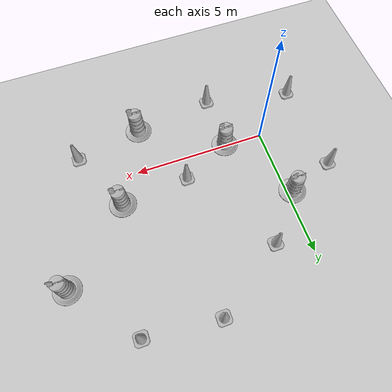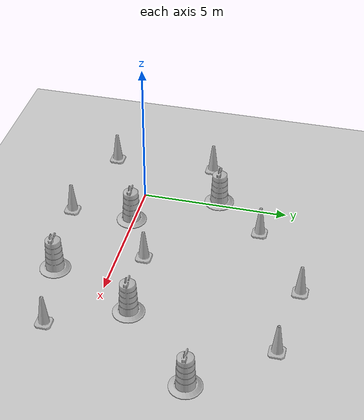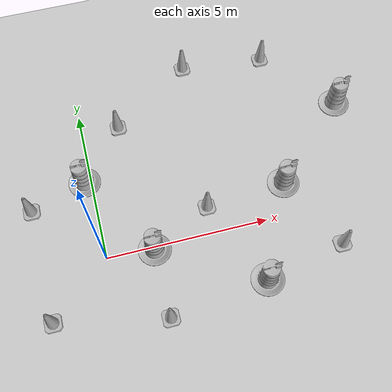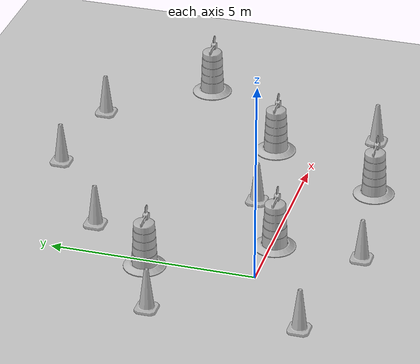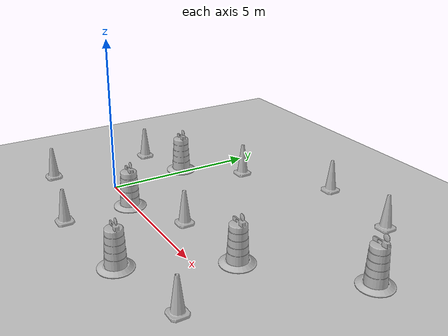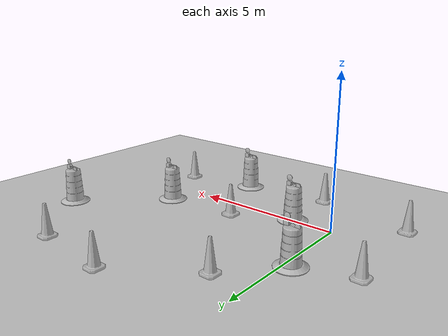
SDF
<sdf version="1.7">
 <world name="default">
  <light name="sun" type="directional">
   <pose>0 0 10 0 -0 0</pose>
   <diffuse>0.8 0.8 0.8 1</diffuse>
   <specular>0.2 0.2 0.2 1</specular>
   <attenuation>
    <range>1000</range>
    <constant>0.9</constant>
    <linear>0.01</linear>
    <quadratic>0.001</quadratic>
   </attenuation>
   <direction>-0.5 0.1 -0.9</direction>
   <spot><inner_angle>0</inner_angle><outer_angle>0</outer_angle><falloff>0</falloff></spot>
  </light>
  <model name="ground_plane">
   <static>1</static>
   <link name="link">
    <collision name="collision">
     <geometry><plane><normal>0 0 1</normal><size>100 100</size></plane></geometry>
     <surface>
      <contact><collide_bitmask>65535</collide_bitmask></contact>
      <friction><ode><mu>100</mu><mu2>50</mu2></ode></friction>
     </surface>
    </collision>
    <visual name="visual">
     <cast_shadows>0</cast_shadows>
     <geometry><plane><normal>0 0 1</normal><size>100 100</size></plane></geometry>
     <material>
      <script><uri>file://media/materials/scripts/gazebo.material</uri><name>Gazebo/Grey</name></script>
     </material>
    </visual>
   </link>
  </model>
  <gravity>0 0 -9.8</gravity>
  <magnetic_field>6e-06 2.3e-05 -4.2e-05</magnetic_field>
  <atmosphere type="adiabatic"/>
  <physics type="ode">
   <max_step_size>0.001</max_step_size>
   <real_time_factor>1</real_time_factor>
   <real_time_update_rate>1000</real_time_update_rate>
  </physics>
  <scene><ambient>0.4 0.4 0.4 1</ambient><background>0.7 0.7 0.7 1</background><shadows>1</shadows></scene>
  <spherical_coordinates>
   <surface_model>EARTH_WGS84</surface_model>
   <latitude_deg>0</latitude_deg>
   <longitude_deg>0</longitude_deg>
   <elevation>0</elevation>
   <heading_deg>0</heading_deg>
  </spherical_coordinates>
  <model name="Construction Barrel">
   <link name="link">
    <inertial>
     <pose>0 0 0.4 0 -0 0</pose>
     <mass>500</mass>
     <inertia><ixx>51.2096</ixx><iyy>51.2096</iyy><izz>25</izz><ixy>0</ixy><ixz>0</ixz><iyz>0</iyz></inertia>
    </inertial>
    <collision name="collision">
     <geometry><mesh><uri>model://construction_barrel/meshes/construction_barrel.dae</uri></mesh></geometry>
    </collision>
    <visual name="visual">
     <geometry><mesh><uri>model://construction_barrel/meshes/construction_barrel.dae</uri></mesh></geometry>
    </visual>
   </link>
   <pose>1.4516 -0.08441 -2e-06 -5e-06 -4e-06 -2.6e-05</pose>
  </model>
  <model name="Construction Cone">
   <link name="link">
    <collision name="collision">
     <geometry>
      <mesh><scale>10 10 10</scale><uri>model://construction_cone/meshes/construction_cone.dae</uri></mesh>
     </geometry>
    </collision>
    <visual name="visual">
     <geometry>
      <mesh><scale>10 10 10</scale><uri>model://construction_cone/meshes/construction_cone.dae</uri></mesh>
     </geometry>
    </visual>
    <inertial>
     <inertia><ixx>1</ixx><ixy>0</ixy><ixz>0</ixz><iyy>1</iyy><iyz>0</iyz><izz>1</izz></inertia>
     <mass>1</mass>
    </inertial>
   </link>
   <pose>1.4541 -2.19611 0 -0 -0 -0</pose>
  </model>
  <model name="Construction Cone_0">
   <link name="link">
    <collision name="collision">
     <geometry>
      <mesh><scale>10 10 10</scale><uri>model://construction_cone/meshes/construction_cone.dae</uri></mesh>
     </geometry>
    </collision>
    <visual name="visual">
     <geometry>
      <mesh><scale>10 10 10</scale><uri>model://construction_cone/meshes/construction_cone.dae</uri></mesh>
     </geometry>
    </visual>
    <inertial>
     <inertia><ixx>1</ixx><ixy>0</ixy><ixz>0</ixz><iyy>1</iyy><iyz>0</iyz><izz>1</izz></inertia>
     <mass>1</mass>
    </inertial>
   </link>
   <pose>-1.82799 -1.52566 -0 0 -0 0</pose>
  </model>
  <model name="Construction Cone_1">
   <link name="link">
    <collision name="collision">
     <geometry>
      <mesh><scale>10 10 10</scale><uri>model://construction_cone/meshes/construction_cone.dae</uri></mesh>
     </geometry>
    </collision>
    <visual name="visual">
     <geometry>
      <mesh><scale>10 10 10</scale><uri>model://construction_cone/meshes/construction_cone.dae</uri></mesh>
     </geometry>
    </visual>
    <inertial>
     <inertia><ixx>1</ixx><ixy>0</ixy><ixz>0</ixz><iyy>1</iyy><iyz>0</iyz><izz>1</izz></inertia>
     <mass>1</mass>
    </inertial>
   </link>
   <pose>-1.96877 2.02121 -0 0 -0 0</pose>
  </model>
  <model name="Construction Barrel_0">
   <link name="link">
    <inertial>
     <pose>0 0 0.4 0 -0 0</pose>
     <mass>500</mass>
     <inertia><ixx>51.2096</ixx><iyy>51.2096</iyy><izz>25</izz><ixy>0</ixy><ixz>0</ixz><iyz>0</iyz></inertia>
    </inertial>
    <collision name="collision">
     <geometry><mesh><uri>model://construction_barrel/meshes/construction_barrel.dae</uri></mesh></geometry>
    </collision>
    <visual name="visual">
     <geometry><mesh><uri>model://construction_barrel/meshes/construction_barrel.dae</uri></mesh></geometry>
    </visual>
   </link>
   <pose>4.46872 -1.79875 -2e-06 1e-06 7e-06 -2e-05</pose>
  </model>
  <model name="Construction Barrel_1">
   <link name="link">
    <inertial>
     <pose>0 0 0.4 0 -0 0</pose>
     <mass>500</mass>
     <inertia><ixx>51.2096</ixx><iyy>51.2096</iyy><izz>25</izz><ixy>0</ixy><ixz>0</ixz><iyz>0</iyz></inertia>
    </inertial>
    <collision name="collision">
     <geometry><mesh><uri>model://construction_barrel/meshes/construction_barrel.dae</uri></mesh></geometry>
    </collision>
    <visual name="visual">
     <geometry><mesh><uri>model://construction_barrel/meshes/construction_barrel.dae</uri></mesh></geometry>
    </visual>
   </link>
   <pose>-0.213529 2.6218 -0 0 0 -2e-05</pose>
  </model>
  <model name="Construction Cone_2">
   <link name="link">
    <collision name="collision">
     <geometry>
      <mesh><scale>10 10 10</scale><uri>model://construction_cone/meshes/construction_cone.dae</uri></mesh>
     </geometry>
    </collision>
    <visual name="visual">
     <geometry>
      <mesh><scale>10 10 10</scale><uri>model://construction_cone/meshes/construction_cone.dae</uri></mesh>
     </geometry>
    </visual>
    <inertial>
     <inertia><ixx>1</ixx><ixy>0</ixy><ixz>0</ixz><iyy>1</iyy><iyz>0</iyz><izz>1</izz></inertia>
     <mass>1</mass>
    </inertial>
   </link>
   <pose>1.20112 4.30531 -0 0 -0 0</pose>
  </model>
  <model name="Construction Cone_3">
   <link name="link">
    <collision name="collision">
     <geometry>
      <mesh><scale>10 10 10</scale><uri>model://construction_cone/meshes/construction_cone.dae</uri></mesh>
     </geometry>
    </collision>
    <visual name="visual">
     <geometry>
      <mesh><scale>10 10 10</scale><uri>model://construction_cone/meshes/construction_cone.dae</uri></mesh>
     </geometry>
    </visual>
    <inertial>
     <inertia><ixx>1</ixx><ixy>0</ixy><ixz>0</ixz><iyy>1</iyy><iyz>0</iyz><izz>1</izz></inertia>
     <mass>1</mass>
    </inertial>
   </link>
   <pose>3.31908 0.853157 -0 0 -1e-06 0</pose>
  </model>
  <model name="Construction Barrel_3">
   <link name="link">
    <inertial>
     <pose>0 0 0.4 0 -0 0</pose>
     <mass>500</mass>
     <inertia><ixx>51.2096</ixx><iyy>51.2096</iyy><izz>25</izz><ixy>0</ixy><ixz>0</ixz><iyz>0</iyz></inertia>
    </inertial>
    <collision name="collision">
     <geometry><mesh><uri>model://construction_barrel/meshes/construction_barrel.dae</uri></mesh></geometry>
    </collision>
    <visual name="visual">
     <geometry><mesh><uri>model://construction_barrel/meshes/construction_barrel.dae</uri></mesh></geometry>
    </visual>
   </link>
   <pose>5.87488 1.06176 1e-06 4e-06 2e-06 -1.3e-05</pose>
  </model>
  <model name="Construction Barrel_4">
   <link name="link">
    <inertial>
     <pose>0 0 0.4 0 -0 0</pose>
     <mass>500</mass>
     <inertia><ixx>51.2096</ixx><iyy>51.2096</iyy><izz>25</izz><ixy>0</ixy><ixz>0</ixz><iyz>0</iyz></inertia>
    </inertial>
    <collision name="collision">
     <geometry><mesh><uri>model://construction_barrel/meshes/construction_barrel.dae</uri></mesh></geometry>
    </collision>
    <visual name="visual">
     <geometry><mesh><uri>model://construction_barrel/meshes/construction_barrel.dae</uri></mesh></geometry>
    </visual>
   </link>
   <pose>8.44553 3.47066 -1e-06 -0 5e-06 -7e-06</pose>
  </model>
  <model name="Construction Cone_4">
   <link name="link">
    <collision name="collision">
     <geometry>
      <mesh><scale>10 10 10</scale><uri>model://construction_cone/meshes/construction_cone.dae</uri></mesh>
     </geometry>
    </collision>
    <visual name="visual">
     <geometry>
      <mesh><scale>10 10 10</scale><uri>model://construction_cone/meshes/construction_cone.dae</uri></mesh>
     </geometry>
    </visual>
    <inertial>
     <inertia><ixx>1</ixx><ixy>0</ixy><ixz>0</ixz><iyy>1</iyy><iyz>0</iyz><izz>1</izz></inertia>
     <mass>1</mass>
    </inertial>
   </link>
   <pose>3.80935 6.06672 -0 0 -0 0</pose>
  </model>
  <model name="Construction Cone_5">
   <link name="link">
    <collision name="collision">
     <geometry>
      <mesh><scale>10 10 10</scale><uri>model://construction_cone/meshes/construction_cone.dae</uri></mesh>
     </geometry>
    </collision>
    <visual name="visual">
     <geometry>
      <mesh><scale>10 10 10</scale><uri>model://construction_cone/meshes/construction_cone.dae</uri></mesh>
     </geometry>
    </visual>
    <inertial>
     <inertia><ixx>1</ixx><ixy>0</ixy><ixz>0</ixz><iyy>1</iyy><iyz>0</iyz><izz>1</izz></inertia>
     <mass>1</mass>
    </inertial>
   </link>
   <pose>6.53288 5.78497 -9e-06 -1e-06 1e-06 -0</pose>
  </model>
  <model name="Construction Cone_6">
   <link name="link">
    <collision name="collision">
     <geometry>
      <mesh><scale>10 10 10</scale><uri>model://construction_cone/meshes/construction_cone.dae</uri></mesh>
     </geometry>
    </collision>
    <visual name="visual">
     <geometry>
      <mesh><scale>10 10 10</scale><uri>model://construction_cone/meshes/construction_cone.dae</uri></mesh>
     </geometry>
    </visual>
    <inertial>
     <inertia><ixx>1</ixx><ixy>0</ixy><ixz>0</ixz><iyy>1</iyy><iyz>0</iyz><izz>1</izz></inertia>
     <mass>1</mass>
    </inertial>
   </link>
   <pose>6.97772 -1.2984 -8e-06 0 1e-06 0</pose>
  </model>
 </world>
</sdf>
